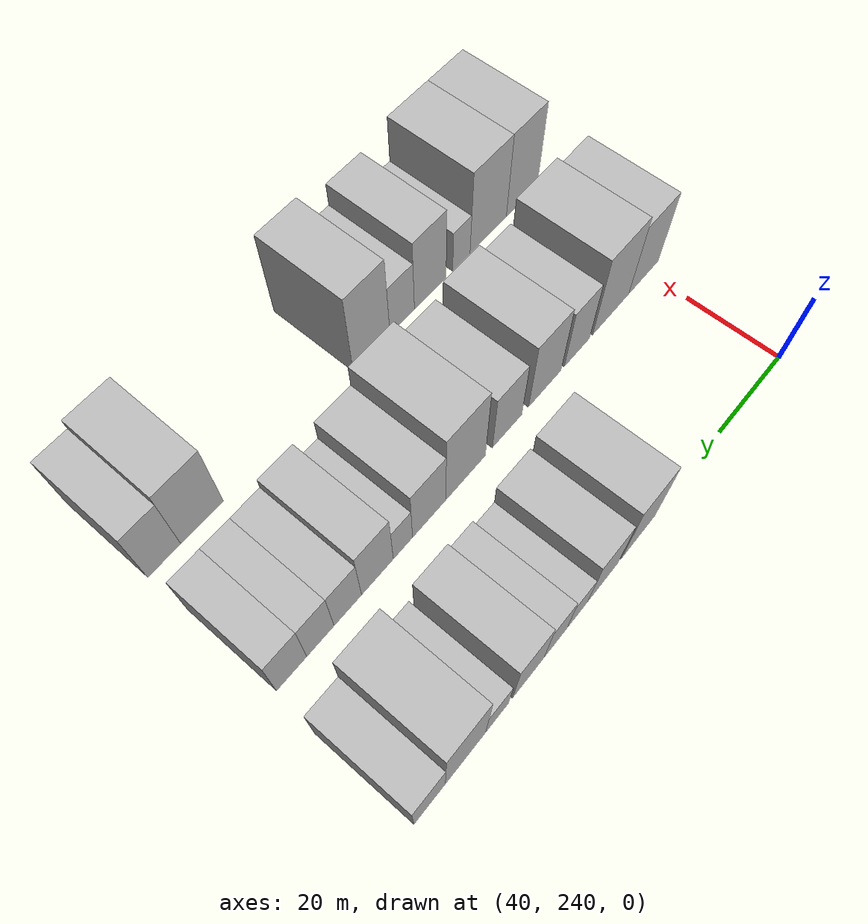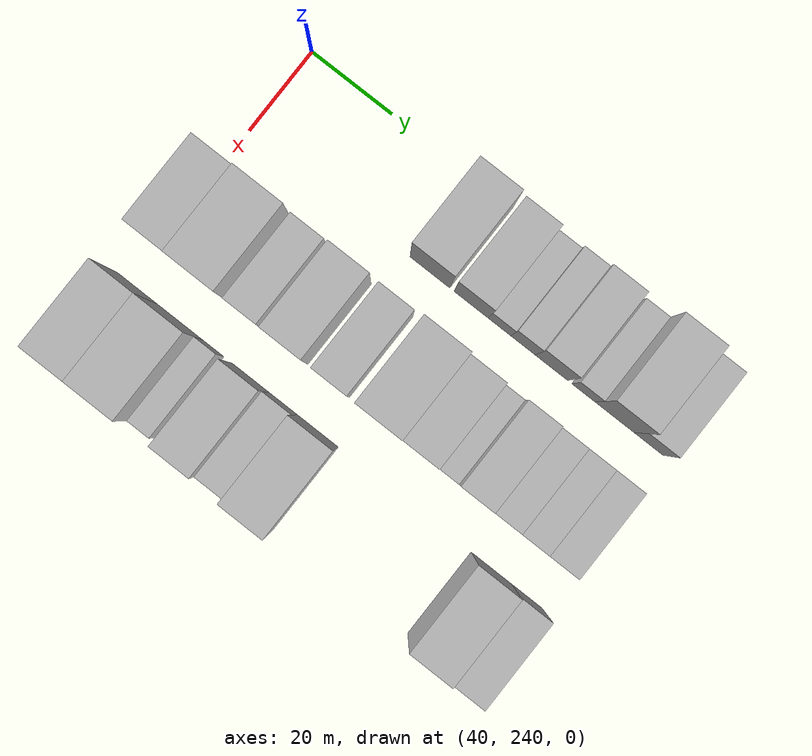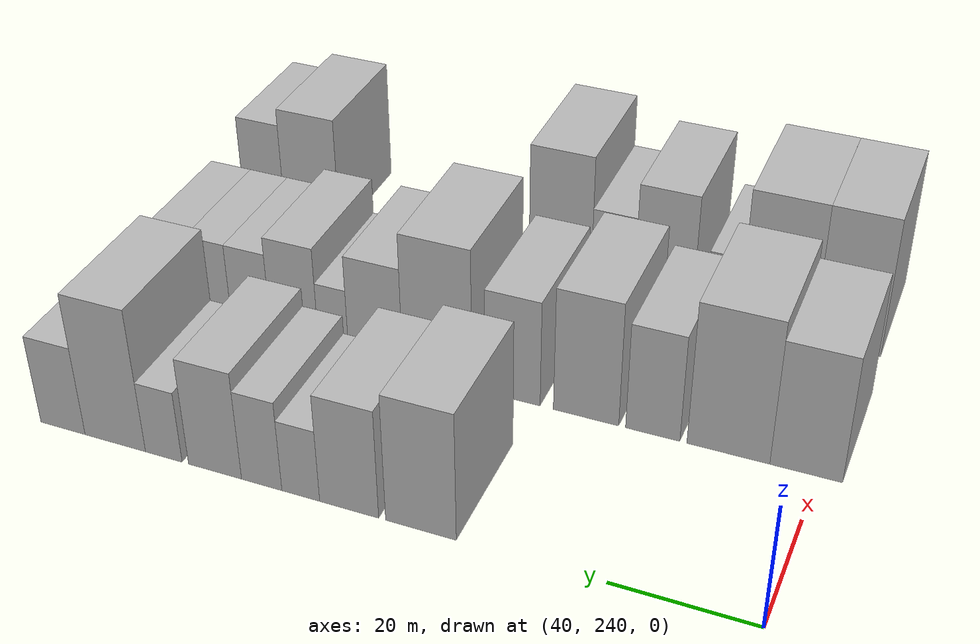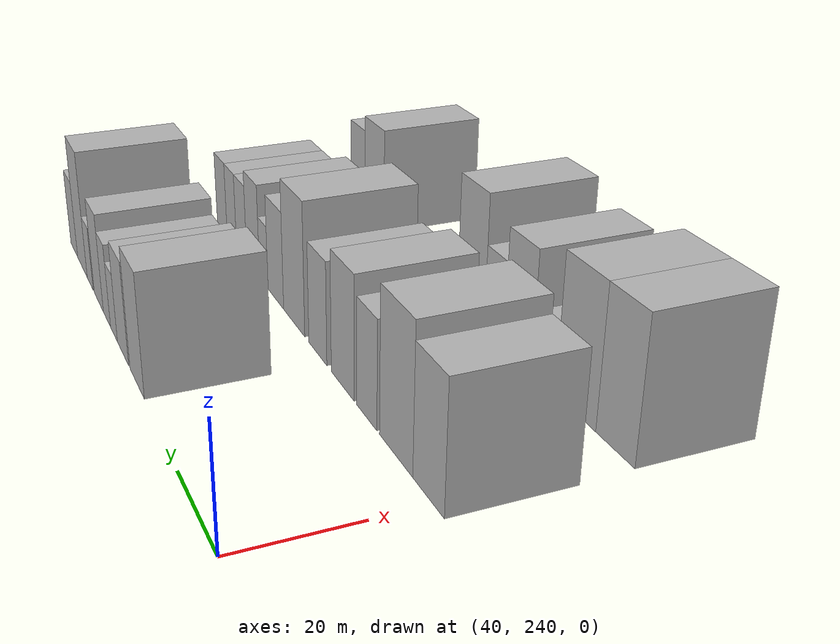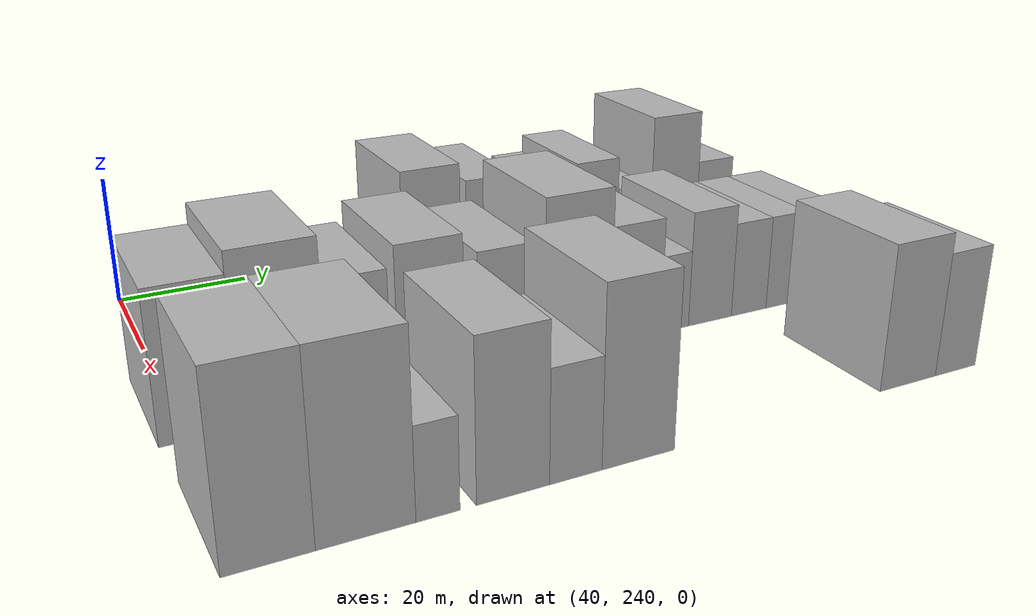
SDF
<sdf version="1.6">
 <world name="default">
  <model name="building_61">
   <static>1</static>
   <pose>50.0000 285.2702 0 0.000000 0.000000 0.000000</pose>
   <link name="link">
    <pose>0 0 10.50 0 0 0</pose>
    <collision name="collision"><geometry><box><size>20.0000 9.9563 21.0000</size></box></geometry></collision>
    <visual name="visual">
     <cast_shadows>0</cast_shadows>
     <geometry><box><size>20.0000 9.9563 21.0000</size></box></geometry>
     <material>
      <script>
       <uri>model://HANNAS_wall/materials/scripts</uri>
       <uri>model://HANNAS_wall/materials/textures</uri>
       <name>vrc/HANNAS_wall</name>
      </script>
     </material>
    </visual>
   </link>
  </model>
  <model name="building_62">
   <static>1</static>
   <pose>50.0000 295.5224 0 0.000000 0.000000 0.000000</pose>
   <link name="link">
    <pose>0 0 9.00 0 0 0</pose>
    <collision name="collision"><geometry><box><size>20.0000 8.5482 18.0000</size></box></geometry></collision>
    <visual name="visual">
     <cast_shadows>0</cast_shadows>
     <geometry><box><size>20.0000 8.5482 18.0000</size></box></geometry>
     <material>
      <script>
       <uri>model://HANNAS_wall/materials/scripts</uri>
       <uri>model://HANNAS_wall/materials/textures</uri>
       <name>vrc/HANNAS_wall</name>
      </script>
     </material>
    </visual>
   </link>
  </model>
  <model name="building_63">
   <static>1</static>
   <pose>50.0000 302.5892 0 0.000000 0.000000 0.000000</pose>
   <link name="link">
    <pose>0 0 6.00 0 0 0</pose>
    <collision name="collision"><geometry><box><size>20.0000 5.5853 12.0000</size></box></geometry></collision>
    <visual name="visual">
     <cast_shadows>0</cast_shadows>
     <geometry><box><size>20.0000 5.5853 12.0000</size></box></geometry>
     <material>
      <script>
       <uri>model://HANNAS_wall/materials/scripts</uri>
       <uri>model://HANNAS_wall/materials/textures</uri>
       <name>vrc/HANNAS_wall</name>
      </script>
     </material>
    </visual>
   </link>
  </model>
  <model name="building_64">
   <static>1</static>
   <pose>50.0000 308.4129 0 0.000000 0.000000 0.000000</pose>
   <link name="link">
    <pose>0 0 7.50 0 0 0</pose>
    <collision name="collision"><geometry><box><size>20.0000 6.0621 15.0000</size></box></geometry></collision>
    <visual name="visual">
     <cast_shadows>0</cast_shadows>
     <geometry><box><size>20.0000 6.0621 15.0000</size></box></geometry>
     <material>
      <script>
       <uri>model://HANNAS_wall/materials/scripts</uri>
       <uri>model://HANNAS_wall/materials/textures</uri>
       <name>vrc/HANNAS_wall</name>
      </script>
     </material>
    </visual>
   </link>
  </model>
  <model name="building_65">
   <static>1</static>
   <pose>50.0000 315.5067 0 0.000000 0.000000 0.000000</pose>
   <link name="link">
    <pose>0 0 9.00 0 0 0</pose>
    <collision name="collision"><geometry><box><size>20.0000 8.1256 18.0000</size></box></geometry></collision>
    <visual name="visual">
     <cast_shadows>0</cast_shadows>
     <geometry><box><size>20.0000 8.1256 18.0000</size></box></geometry>
     <material>
      <script>
       <uri>model://HANNAS_wall/materials/scripts</uri>
       <uri>model://HANNAS_wall/materials/textures</uri>
       <name>vrc/HANNAS_wall</name>
      </script>
     </material>
    </visual>
   </link>
  </model>
  <model name="building_66">
   <static>1</static>
   <pose>50.0000 323.4332 0 0.000000 0.000000 0.000000</pose>
   <link name="link">
    <pose>0 0 6.00 0 0 0</pose>
    <collision name="collision"><geometry><box><size>20.0000 5.7274 12.0000</size></box></geometry></collision>
    <visual name="visual">
     <cast_shadows>0</cast_shadows>
     <geometry><box><size>20.0000 5.7274 12.0000</size></box></geometry>
     <material>
      <script>
       <uri>model://HANNAS_wall/materials/scripts</uri>
       <uri>model://HANNAS_wall/materials/textures</uri>
       <name>vrc/HANNAS_wall</name>
      </script>
     </material>
    </visual>
   </link>
  </model>
  <model name="building_67">
   <static>1</static>
   <pose>50.0000 331.1289 0 0.000000 0.000000 0.000000</pose>
   <link name="link">
    <pose>0 0 12.00 0 0 0</pose>
    <collision name="collision"><geometry><box><size>20.0000 9.6640 24.0000</size></box></geometry></collision>
    <visual name="visual">
     <cast_shadows>0</cast_shadows>
     <geometry><box><size>20.0000 9.6640 24.0000</size></box></geometry>
     <material>
      <script>
       <uri>model://HANNAS_wall/materials/scripts</uri>
       <uri>model://HANNAS_wall/materials/textures</uri>
       <name>vrc/HANNAS_wall</name>
      </script>
     </material>
    </visual>
   </link>
  </model>
  <model name="building_68">
   <static>1</static>
   <pose>50.0000 339.5677 0 0.000000 0.000000 0.000000</pose>
   <link name="link">
    <pose>0 0 7.50 0 0 0</pose>
    <collision name="collision"><geometry><box><size>20.0000 7.2137 15.0000</size></box></geometry></collision>
    <visual name="visual">
     <cast_shadows>0</cast_shadows>
     <geometry><box><size>20.0000 7.2137 15.0000</size></box></geometry>
     <material>
      <script>
       <uri>model://HANNAS_wall/materials/scripts</uri>
       <uri>model://HANNAS_wall/materials/textures</uri>
       <name>vrc/HANNAS_wall</name>
      </script>
     </material>
    </visual>
   </link>
  </model>
  <model name="building_132">
   <static>1</static>
   <pose>79.0000 241.5729 0 0.000000 0.000000 0.000000</pose>
   <link name="link">
    <pose>0 0 10.50 0 0 0</pose>
    <collision name="collision"><geometry><box><size>20.0000 9.9345 21.0000</size></box></geometry></collision>
    <visual name="visual">
     <cast_shadows>0</cast_shadows>
     <geometry><box><size>20.0000 9.9345 21.0000</size></box></geometry>
     <material>
      <script>
       <uri>model://HANNAS_wall/materials/scripts</uri>
       <uri>model://HANNAS_wall/materials/textures</uri>
       <name>vrc/HANNAS_wall</name>
      </script>
     </material>
    </visual>
   </link>
  </model>
  <model name="building_133">
   <static>1</static>
   <pose>79.0000 252.3539 0 0.000000 0.000000 0.000000</pose>
   <link name="link">
    <pose>0 0 12.00 0 0 0</pose>
    <collision name="collision"><geometry><box><size>20.0000 11.6275 24.0000</size></box></geometry></collision>
    <visual name="visual">
     <cast_shadows>0</cast_shadows>
     <geometry><box><size>20.0000 11.6275 24.0000</size></box></geometry>
     <material>
      <script>
       <uri>model://HANNAS_wall/materials/scripts</uri>
       <uri>model://HANNAS_wall/materials/textures</uri>
       <name>vrc/HANNAS_wall</name>
      </script>
     </material>
    </visual>
   </link>
  </model>
  <model name="building_134">
   <static>1</static>
   <pose>79.0000 263.0839 0 0.000000 0.000000 0.000000</pose>
   <link name="link">
    <pose>0 0 9.00 0 0 0</pose>
    <collision name="collision"><geometry><box><size>20.0000 7.8323 18.0000</size></box></geometry></collision>
    <visual name="visual">
     <cast_shadows>0</cast_shadows>
     <geometry><box><size>20.0000 7.8323 18.0000</size></box></geometry>
     <material>
      <script>
       <uri>model://HANNAS_wall/materials/scripts</uri>
       <uri>model://HANNAS_wall/materials/textures</uri>
       <name>vrc/HANNAS_wall</name>
      </script>
     </material>
    </visual>
   </link>
  </model>
  <model name="building_135">
   <static>1</static>
   <pose>79.0000 272.8400 0 0.000000 0.000000 0.000000</pose>
   <link name="link">
    <pose>0 0 10.50 0 0 0</pose>
    <collision name="collision"><geometry><box><size>20.0000 9.6799 21.0000</size></box></geometry></collision>
    <visual name="visual">
     <cast_shadows>0</cast_shadows>
     <geometry><box><size>20.0000 9.6799 21.0000</size></box></geometry>
     <material>
      <script>
       <uri>model://HANNAS_wall/materials/scripts</uri>
       <uri>model://HANNAS_wall/materials/textures</uri>
       <name>vrc/HANNAS_wall</name>
      </script>
     </material>
    </visual>
   </link>
  </model>
  <model name="building_136">
   <static>1</static>
   <pose>79.0000 283.8817 0 0.000000 0.000000 0.000000</pose>
   <link name="link">
    <pose>0 0 9.00 0 0 0</pose>
    <collision name="collision"><geometry><box><size>20.0000 8.4035 18.0000</size></box></geometry></collision>
    <visual name="visual">
     <cast_shadows>0</cast_shadows>
     <geometry><box><size>20.0000 8.4035 18.0000</size></box></geometry>
     <material>
      <script>
       <uri>model://HANNAS_wall/materials/scripts</uri>
       <uri>model://HANNAS_wall/materials/textures</uri>
       <name>vrc/HANNAS_wall</name>
      </script>
     </material>
    </visual>
   </link>
  </model>
  <model name="building_137">
   <static>1</static>
   <pose>79.0000 295.5110 0 0.000000 0.000000 0.000000</pose>
   <link name="link">
    <pose>0 0 12.00 0 0 0</pose>
    <collision name="collision"><geometry><box><size>20.0000 10.8550 24.0000</size></box></geometry></collision>
    <visual name="visual">
     <cast_shadows>0</cast_shadows>
     <geometry><box><size>20.0000 10.8550 24.0000</size></box></geometry>
     <material>
      <script>
       <uri>model://HANNAS_wall/materials/scripts</uri>
       <uri>model://HANNAS_wall/materials/textures</uri>
       <name>vrc/HANNAS_wall</name>
      </script>
     </material>
    </visual>
   </link>
  </model>
  <model name="building_138">
   <static>1</static>
   <pose>79.0000 305.2693 0 0.000000 0.000000 0.000000</pose>
   <link name="link">
    <pose>0 0 9.00 0 0 0</pose>
    <collision name="collision"><geometry><box><size>20.0000 8.6615 18.0000</size></box></geometry></collision>
    <visual name="visual">
     <cast_shadows>0</cast_shadows>
     <geometry><box><size>20.0000 8.6615 18.0000</size></box></geometry>
     <material>
      <script>
       <uri>model://HANNAS_wall/materials/scripts</uri>
       <uri>model://HANNAS_wall/materials/textures</uri>
       <name>vrc/HANNAS_wall</name>
      </script>
     </material>
    </visual>
   </link>
  </model>
  <model name="building_139">
   <static>1</static>
   <pose>79.0000 312.0457 0 0.000000 0.000000 0.000000</pose>
   <link name="link">
    <pose>0 0 6.00 0 0 0</pose>
    <collision name="collision"><geometry><box><size>20.0000 4.8913 12.0000</size></box></geometry></collision>
    <visual name="visual">
     <cast_shadows>0</cast_shadows>
     <geometry><box><size>20.0000 4.8913 12.0000</size></box></geometry>
     <material>
      <script>
       <uri>model://HANNAS_wall/materials/scripts</uri>
       <uri>model://HANNAS_wall/materials/textures</uri>
       <name>vrc/HANNAS_wall</name>
      </script>
     </material>
    </visual>
   </link>
  </model>
  <model name="building_140">
   <static>1</static>
   <pose>79.0000 318.4454 0 0.000000 0.000000 0.000000</pose>
   <link name="link">
    <pose>0 0 9.00 0 0 0</pose>
    <collision name="collision"><geometry><box><size>20.0000 7.9080 18.0000</size></box></geometry></collision>
    <visual name="visual">
     <cast_shadows>0</cast_shadows>
     <geometry><box><size>20.0000 7.9080 18.0000</size></box></geometry>
     <material>
      <script>
       <uri>model://HANNAS_wall/materials/scripts</uri>
       <uri>model://HANNAS_wall/materials/textures</uri>
       <name>vrc/HANNAS_wall</name>
      </script>
     </material>
    </visual>
   </link>
  </model>
  <model name="building_141">
   <static>1</static>
   <pose>79.0000 325.7124 0 0.000000 0.000000 0.000000</pose>
   <link name="link">
    <pose>0 0 7.50 0 0 0</pose>
    <collision name="collision"><geometry><box><size>20.0000 6.6260 15.0000</size></box></geometry></collision>
    <visual name="visual">
     <cast_shadows>0</cast_shadows>
     <geometry><box><size>20.0000 6.6260 15.0000</size></box></geometry>
     <material>
      <script>
       <uri>model://HANNAS_wall/materials/scripts</uri>
       <uri>model://HANNAS_wall/materials/textures</uri>
       <name>vrc/HANNAS_wall</name>
      </script>
     </material>
    </visual>
   </link>
  </model>
  <model name="building_142">
   <static>1</static>
   <pose>79.0000 332.2222 0 0.000000 0.000000 0.000000</pose>
   <link name="link">
    <pose>0 0 7.50 0 0 0</pose>
    <collision name="collision"><geometry><box><size>20.0000 6.3937 15.0000</size></box></geometry></collision>
    <visual name="visual">
     <cast_shadows>0</cast_shadows>
     <geometry><box><size>20.0000 6.3937 15.0000</size></box></geometry>
     <material>
      <script>
       <uri>model://HANNAS_wall/materials/scripts</uri>
       <uri>model://HANNAS_wall/materials/textures</uri>
       <name>vrc/HANNAS_wall</name>
      </script>
     </material>
    </visual>
   </link>
  </model>
  <model name="building_143">
   <static>1</static>
   <pose>79.0000 338.8728 0 0.000000 0.000000 0.000000</pose>
   <link name="link">
    <pose>0 0 7.50 0 0 0</pose>
    <collision name="collision"><geometry><box><size>20.0000 6.9075 15.0000</size></box></geometry></collision>
    <visual name="visual">
     <cast_shadows>0</cast_shadows>
     <geometry><box><size>20.0000 6.9075 15.0000</size></box></geometry>
     <material>
      <script>
       <uri>model://HANNAS_wall/materials/scripts</uri>
       <uri>model://HANNAS_wall/materials/textures</uri>
       <name>vrc/HANNAS_wall</name>
      </script>
     </material>
    </visual>
   </link>
  </model>
  <model name="building_210">
   <static>1</static>
   <pose>108.0000 242.1443 0 0.000000 0.000000 0.000000</pose>
   <link name="link">
    <pose>0 0 12.00 0 0 0</pose>
    <collision name="collision"><geometry><box><size>20.0000 10.0476 24.0000</size></box></geometry></collision>
    <visual name="visual">
     <cast_shadows>0</cast_shadows>
     <geometry><box><size>20.0000 10.0476 24.0000</size></box></geometry>
     <material>
      <script>
       <uri>model://HANNAS_wall/materials/scripts</uri>
       <uri>model://HANNAS_wall/materials/textures</uri>
       <name>vrc/HANNAS_wall</name>
      </script>
     </material>
    </visual>
   </link>
  </model>
  <model name="building_211">
   <static>1</static>
   <pose>108.0000 252.8616 0 0.000000 0.000000 0.000000</pose>
   <link name="link">
    <pose>0 0 12.00 0 0 0</pose>
    <collision name="collision"><geometry><box><size>20.0000 11.3869 24.0000</size></box></geometry></collision>
    <visual name="visual">
     <cast_shadows>0</cast_shadows>
     <geometry><box><size>20.0000 11.3869 24.0000</size></box></geometry>
     <material>
      <script>
       <uri>model://HANNAS_wall/materials/scripts</uri>
       <uri>model://HANNAS_wall/materials/textures</uri>
       <name>vrc/HANNAS_wall</name>
      </script>
     </material>
    </visual>
   </link>
  </model>
  <model name="building_212">
   <static>1</static>
   <pose>108.0000 261.1997 0 0.000000 0.000000 0.000000</pose>
   <link name="link">
    <pose>0 0 6.00 0 0 0</pose>
    <collision name="collision"><geometry><box><size>20.0000 5.2895 12.0000</size></box></geometry></collision>
    <visual name="visual">
     <cast_shadows>0</cast_shadows>
     <geometry><box><size>20.0000 5.2895 12.0000</size></box></geometry>
     <material>
      <script>
       <uri>model://HANNAS_wall/materials/scripts</uri>
       <uri>model://HANNAS_wall/materials/textures</uri>
       <name>vrc/HANNAS_wall</name>
      </script>
     </material>
    </visual>
   </link>
  </model>
  <model name="building_213">
   <static>1</static>
   <pose>108.0000 270.4988 0 0.000000 0.000000 0.000000</pose>
   <link name="link">
    <pose>0 0 10.50 0 0 0</pose>
    <collision name="collision"><geometry><box><size>20.0000 9.3087 21.0000</size></box></geometry></collision>
    <visual name="visual">
     <cast_shadows>0</cast_shadows>
     <geometry><box><size>20.0000 9.3087 21.0000</size></box></geometry>
     <material>
      <script>
       <uri>model://HANNAS_wall/materials/scripts</uri>
       <uri>model://HANNAS_wall/materials/textures</uri>
       <name>vrc/HANNAS_wall</name>
      </script>
     </material>
    </visual>
   </link>
  </model>
  <model name="building_214">
   <static>1</static>
   <pose>108.0000 278.6515 0 0.000000 0.000000 0.000000</pose>
   <link name="link">
    <pose>0 0 7.50 0 0 0</pose>
    <collision name="collision"><geometry><box><size>20.0000 6.9967 15.0000</size></box></geometry></collision>
    <visual name="visual">
     <cast_shadows>0</cast_shadows>
     <geometry><box><size>20.0000 6.9967 15.0000</size></box></geometry>
     <material>
      <script>
       <uri>model://HANNAS_wall/materials/scripts</uri>
       <uri>model://HANNAS_wall/materials/textures</uri>
       <name>vrc/HANNAS_wall</name>
      </script>
     </material>
    </visual>
   </link>
  </model>
  <model name="building_215">
   <static>1</static>
   <pose>108.0000 287.2674 0 0.000000 0.000000 0.000000</pose>
   <link name="link">
    <pose>0 0 12.00 0 0 0</pose>
    <collision name="collision"><geometry><box><size>20.0000 10.2350 24.0000</size></box></geometry></collision>
    <visual name="visual">
     <cast_shadows>0</cast_shadows>
     <geometry><box><size>20.0000 10.2350 24.0000</size></box></geometry>
     <material>
      <script>
       <uri>model://HANNAS_wall/materials/scripts</uri>
       <uri>model://HANNAS_wall/materials/textures</uri>
       <name>vrc/HANNAS_wall</name>
      </script>
     </material>
    </visual>
   </link>
  </model>
  <model name="building_216">
   <static>1</static>
   <pose>108.0000 330.3159 0 0.000000 0.000000 0.000000</pose>
   <link name="link">
    <pose>0 0 10.50 0 0 0</pose>
    <collision name="collision"><geometry><box><size>20.0000 9.9540 21.0000</size></box></geometry></collision>
    <visual name="visual">
     <cast_shadows>0</cast_shadows>
     <geometry><box><size>20.0000 9.9540 21.0000</size></box></geometry>
     <material>
      <script>
       <uri>model://HANNAS_wall/materials/scripts</uri>
       <uri>model://HANNAS_wall/materials/textures</uri>
       <name>vrc/HANNAS_wall</name>
      </script>
     </material>
    </visual>
   </link>
  </model>
  <model name="building_217">
   <static>1</static>
   <pose>108.0000 339.0454 0 0.000000 0.000000 0.000000</pose>
   <link name="link">
    <pose>0 0 9.00 0 0 0</pose>
    <collision name="collision"><geometry><box><size>20.0000 7.5049 18.0000</size></box></geometry></collision>
    <visual name="visual">
     <cast_shadows>0</cast_shadows>
     <geometry><box><size>20.0000 7.5049 18.0000</size></box></geometry>
     <material>
      <script>
       <uri>model://HANNAS_wall/materials/scripts</uri>
       <uri>model://HANNAS_wall/materials/textures</uri>
       <name>vrc/HANNAS_wall</name>
      </script>
     </material>
    </visual>
   </link>
  </model>
 </world>
</sdf>
